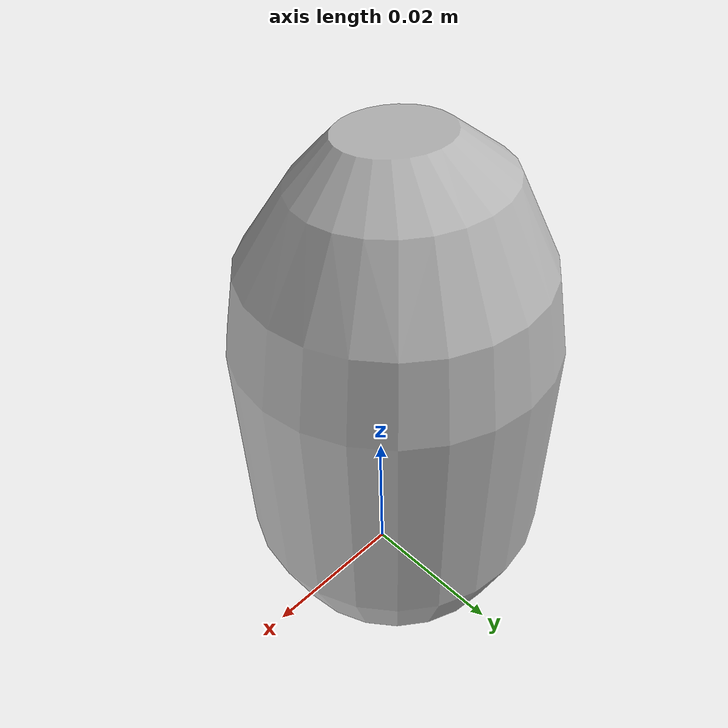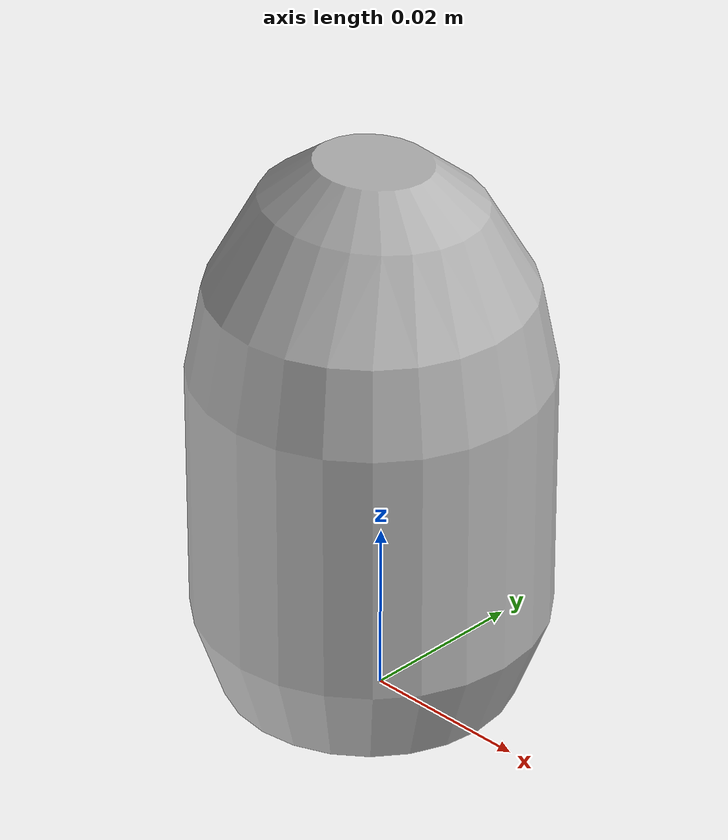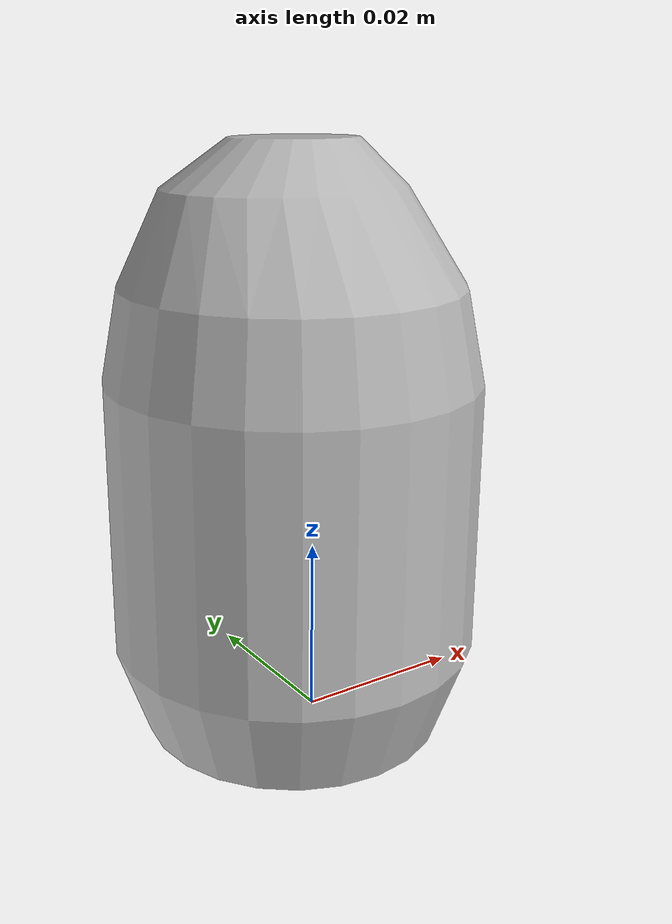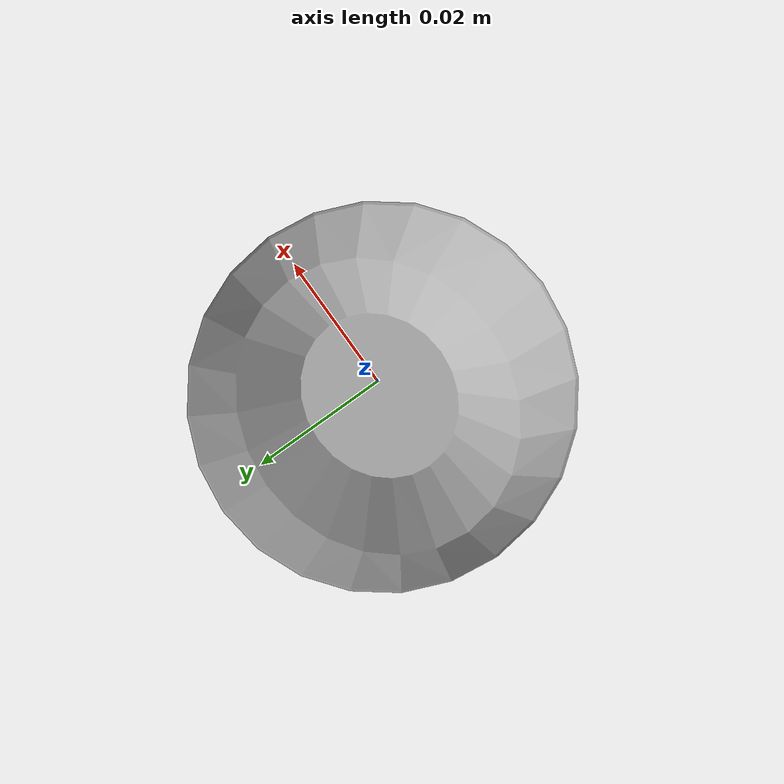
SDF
<?xml version='1.0'?>
<sdf version="1.5">
    <model name="lettuce">
        <link name="link">
        <inertial>
            <mass> 0.4 </mass>
            <inertia>
                <ixx>0.0001</ixx>
                <ixy>0.0</ixy>
                <ixz>0.0</ixz>
                <iyy>0.0001</iyy>
                <iyz>0.0</iyz>
                <izz>0.0001</izz>
            </inertia>
        </inertial>
        <collision name="collision">
            <pose>0 0 0.05 1.5708 0 0</pose>
            <geometry>
                <cylinder>
                    <length> 0.16 </length>
                    <radius> 0.05 </radius>
                </cylinder>
             </geometry>
            <surface>
                <friction>
                    <ode>
                        <mu>0.8</mu>
                        <mu2>0.8</mu2>
                    </ode>
                </friction>
                <bounce>
                    <restitution_coefficient>0.01</restitution_coefficient>
                    <threshold>0.01</threshold>
                </bounce>
                <contact>
                    <elastic_modulus>10e8</elastic_modulus>
                    <ode>
                        <soft_cfm>0.8</soft_cfm>
                        <soft_erp>0.8</soft_erp>
                        <kp>2500.0</kp>
                        <kd>5.0</kd>
                        <max_vel>0.1</max_vel>
                        <min_depth>0.0001</min_depth>
                    </ode>
                </contact>
            </surface>
        </collision>
        <visual name="visual">
            <geometry>
                <mesh>
                    <uri>model://lettuce/meshes/lettuce.dae</uri>
                    <scale> 1.0 1.0 1.0 </scale>
                </mesh>
            </geometry>
        </visual>
        </link>
    </model>
</sdf>
